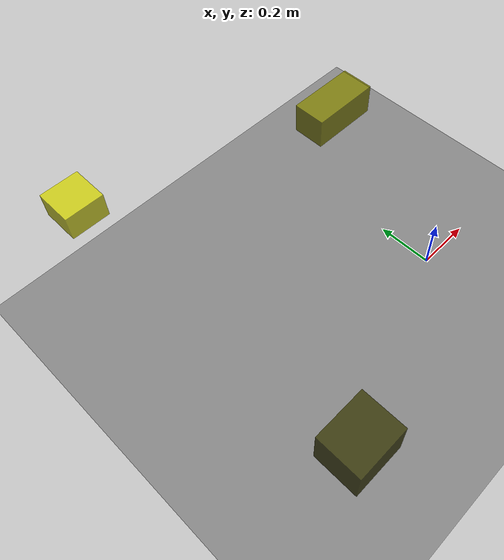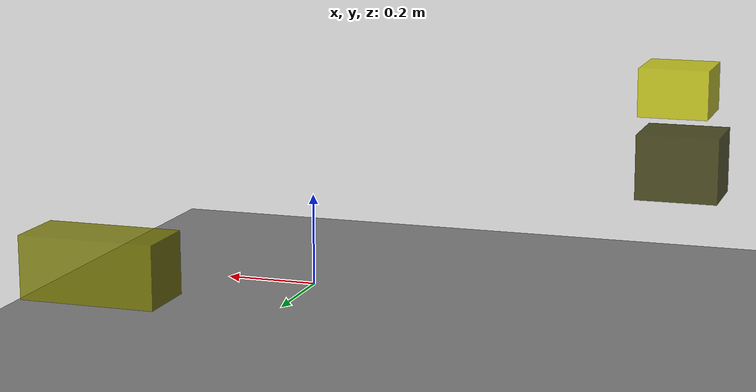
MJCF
<?xml version="1.0"?>
<mujoco model="obstacle_scene">
  <compiler angle="radian" coordinate="local"/>
  <option timestep="0.001" gravity="0 0 -9.81"/>

  <asset>
    <material name="obstacle_mat" rgba="0.8 0.8 0.0 0.8"/>
    <material name="ground_mat" rgba="0.5 0.5 0.5 1"/>
  </asset>

  <worldbody>
    <!-- Ground plane -->
    <geom name="ground" type="plane" size="3 3 0.1" material="ground_mat"/>

    <!-- Obstacles -->
    <body name="obstacle_0" pos="-0.750473 -0.303473 0.257126">
      <geom name="obs_0" type="box" size="0.090222 0.076393 0.072153" rgba="0.2 0.2 0.0 0.8"/>
    </body>
    <body name="obstacle_1" pos="0.195082 0.638221 0.184422">
      <geom name="obs_1" type="box" size="0.136801 0.065542 0.062658" rgba="0.5 0.5 0.0 0.8"/>
    </body>
    <body name="obstacle_2" pos="-0.894496 0.619791 0.573843">
      <geom name="obs_2" type="box" size="0.059549 0.059110 0.041448" rgba="0.8 0.8 0.0 0.8"/>
    </body>
  </worldbody>
</mujoco>
